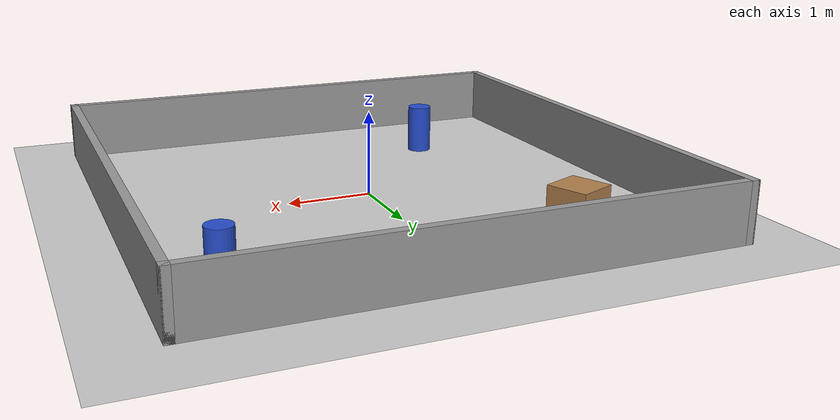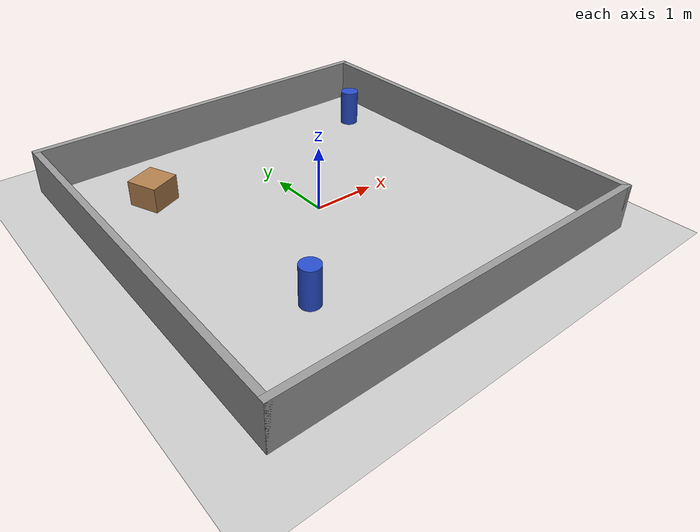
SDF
<?xml version="1.0" ?>
<sdf version="1.6">
  <world name="amigo_lab">

    <include><uri>model://sun</uri></include>
    <include><uri>model://ground_plane</uri></include>

    <physics type="ode">
      <max_step_size>0.001</max_step_size>
      <real_time_factor>1.0</real_time_factor>
      <real_time_update_rate>1000</real_time_update_rate>
    </physics>

    <scene>
      <ambient>0.5 0.5 0.5 1</ambient>
      <shadows>false</shadows>
    </scene>

    <!-- ============ Perimeter walls ============ -->
    <model name="wall_north">
      <static>true</static>
      <pose>0 3 0.35 0 0 0</pose>
      <link name="link">
        <collision name="collision">
          <geometry><box><size>6.1 0.1 0.7</size></box></geometry>
        </collision>
        <visual name="visual">
          <geometry><box><size>6.1 0.1 0.7</size></box></geometry>
          <material><script><name>Gazebo/Grey</name>
            <uri>file://media/materials/scripts/gazebo.material</uri></script></material>
        </visual>
      </link>
    </model>

    <model name="wall_south">
      <static>true</static>
      <pose>0 -3 0.35 0 0 0</pose>
      <link name="link">
        <collision name="collision">
          <geometry><box><size>6.1 0.1 0.7</size></box></geometry>
        </collision>
        <visual name="visual">
          <geometry><box><size>6.1 0.1 0.7</size></box></geometry>
          <material><script><name>Gazebo/Grey</name>
            <uri>file://media/materials/scripts/gazebo.material</uri></script></material>
        </visual>
      </link>
    </model>

    <model name="wall_east">
      <static>true</static>
      <pose>3 0 0.35 0 0 0</pose>
      <link name="link">
        <collision name="collision">
          <geometry><box><size>0.1 6.1 0.7</size></box></geometry>
        </collision>
        <visual name="visual">
          <geometry><box><size>0.1 6.1 0.7</size></box></geometry>
          <material><script><name>Gazebo/Grey</name>
            <uri>file://media/materials/scripts/gazebo.material</uri></script></material>
        </visual>
      </link>
    </model>

    <model name="wall_west">
      <static>true</static>
      <pose>-3 0 0.35 0 0 0</pose>
      <link name="link">
        <collision name="collision">
          <geometry><box><size>0.1 6.1 0.7</size></box></geometry>
        </collision>
        <visual name="visual">
          <geometry><box><size>0.1 6.1 0.7</size></box></geometry>
          <material><script><name>Gazebo/Grey</name>
            <uri>file://media/materials/scripts/gazebo.material</uri></script></material>
        </visual>
      </link>
    </model>

    <!-- ============ Obstacles ============ -->
    <model name="pillar_a">
      <static>true</static>
      <pose>2.3 2.0 0.3 0 0 0</pose>
      <link name="link">
        <collision name="collision">
          <geometry><cylinder><radius>0.15</radius><length>0.6</length></cylinder></geometry>
        </collision>
        <visual name="visual">
          <geometry><cylinder><radius>0.15</radius><length>0.6</length></cylinder></geometry>
          <material><script><name>Gazebo/Blue</name>
            <uri>file://media/materials/scripts/gazebo.material</uri></script></material>
        </visual>
      </link>
    </model>

    <model name="pillar_b">
      <static>true</static>
      <pose>-1.4 -1.6 0.3 0 0 0</pose>
      <link name="link">
        <collision name="collision">
          <geometry><cylinder><radius>0.15</radius><length>0.6</length></cylinder></geometry>
        </collision>
        <visual name="visual">
          <geometry><cylinder><radius>0.15</radius><length>0.6</length></cylinder></geometry>
          <material><script><name>Gazebo/Blue</name>
            <uri>file://media/materials/scripts/gazebo.material</uri></script></material>
        </visual>
      </link>
    </model>

    <model name="crate">
      <static>true</static>
      <pose>-1.8 1.7 0.2 0 0 0.4</pose>
      <link name="link">
        <collision name="collision">
          <geometry><box><size>0.5 0.5 0.4</size></box></geometry>
        </collision>
        <visual name="visual">
          <geometry><box><size>0.5 0.5 0.4</size></box></geometry>
          <material><script><name>Gazebo/Wood</name>
            <uri>file://media/materials/scripts/gazebo.material</uri></script></material>
        </visual>
      </link>
    </model>

  </world>
</sdf>
